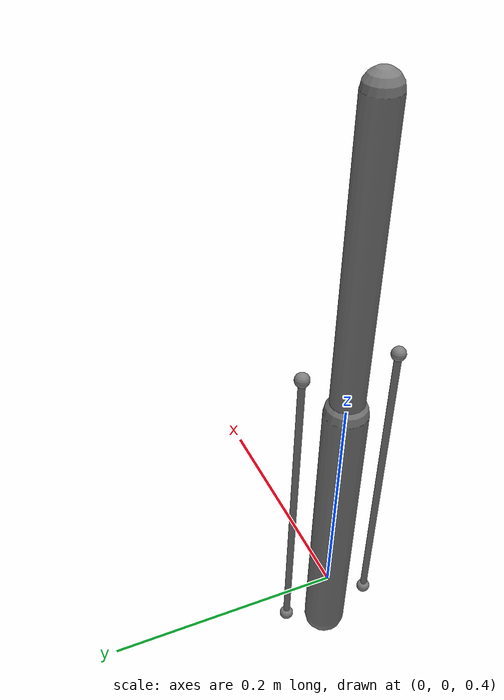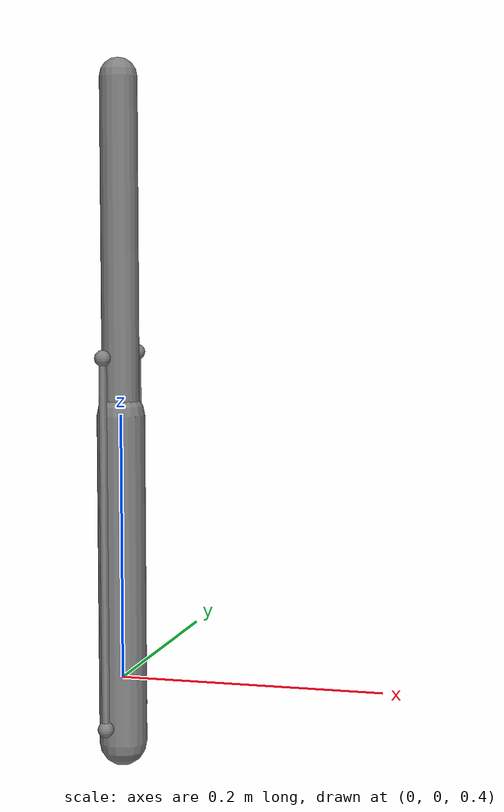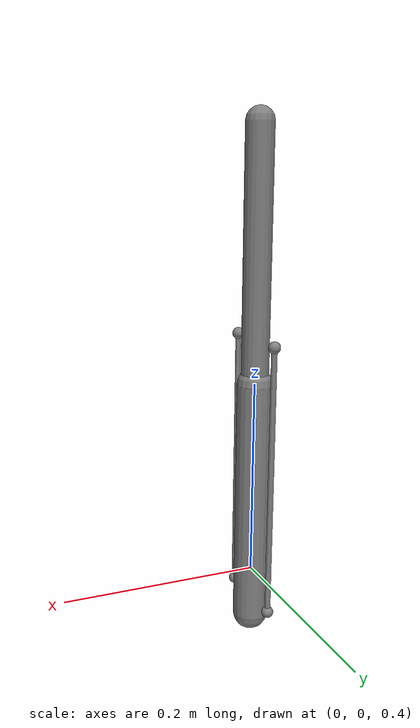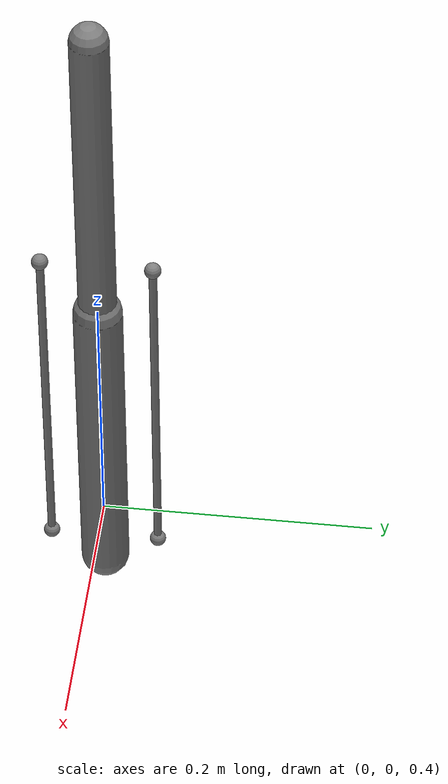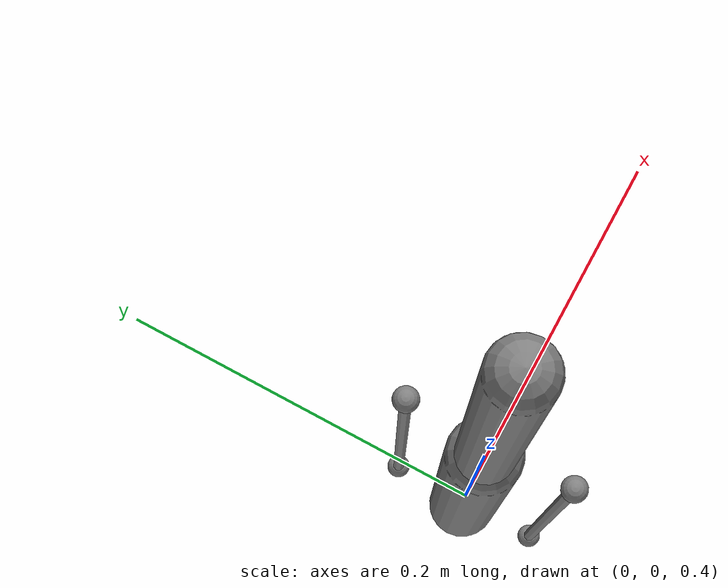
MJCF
<mujoco model="efm_biceps_triceps_arm">

  <compiler angle="degree" coordinate="local"/>
  <option timestep="0.002" gravity="0 0 -9.81" integrator="RK4"/>

  <default>
    <geom type="capsule" density="500" friction="0.8 0.1 0.1"/>
    <joint damping="0.05" armature="0.001"/>
    <site size="0.006"/>
  </default>

  <worldbody>
    <light pos="0 -2 2" dir="0 1 -1"/>
    <body name="upper_arm" pos="0 0 0.35">
      <geom name="upper_arm_geom" fromto="0 0 0 0 0 0.25" size="0.018"/>
      <site name="flex_origin" pos="0 0.040 0.020"/>
      <site name="extend_origin" pos="0 -0.040 0.020"/>

      <body name="forearm" pos="0 0 0.25">
        <joint name="elbow" type="hinge" axis="1 0 0" range="-20 130" limited="true"/>
        <geom name="forearm_geom" fromto="0 0 0 0 0 0.25" size="0.014"/>
        <site name="flex_insert" pos="0 0.040 0.045"/>
        <site name="extend_insert" pos="0 -0.040 0.045"/>
      </body>
    </body>
  </worldbody>

  <tendon>
    <spatial name="flex_tendon" limited="false" width="0.003">
      <site site="flex_origin"/>
      <site site="flex_insert"/>
    </spatial>
    <spatial name="extend_tendon" limited="false" width="0.003">
      <site site="extend_origin"/>
      <site site="extend_insert"/>
    </spatial>
  </tendon>

  <actuator>
    <general name="efm_flexor"
             tendon="flex_tendon"
             ctrlrange="0 1"
             ctrllimited="true"
             dyntype="filter"
             dynprm="0.30"
             gaintype="fixed"
             gainprm="30"
             biastype="none"/>
    <general name="efm_extensor"
             tendon="extend_tendon"
             ctrlrange="0 1"
             ctrllimited="true"
             dyntype="filter"
             dynprm="0.30"
             gaintype="fixed"
             gainprm="30"
             biastype="none"/>
  </actuator>

</mujoco>
